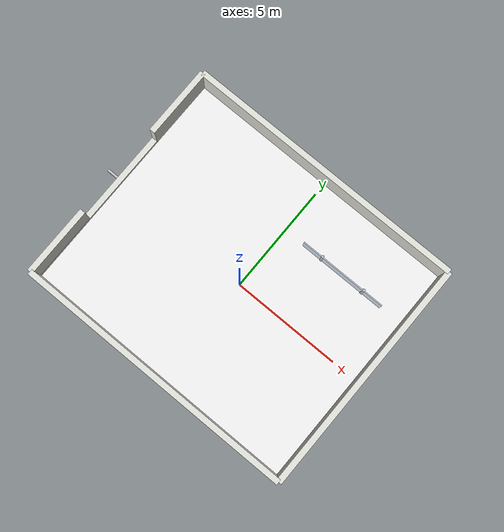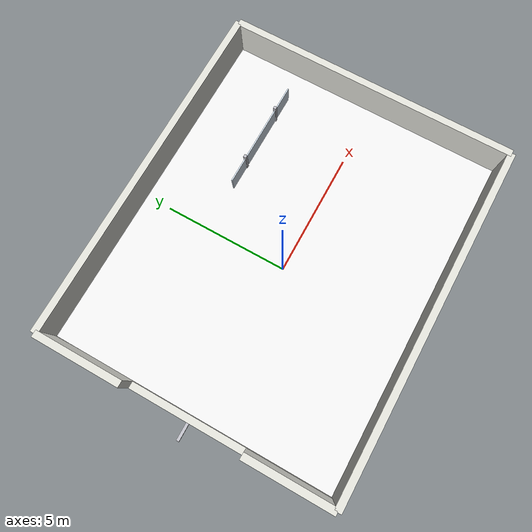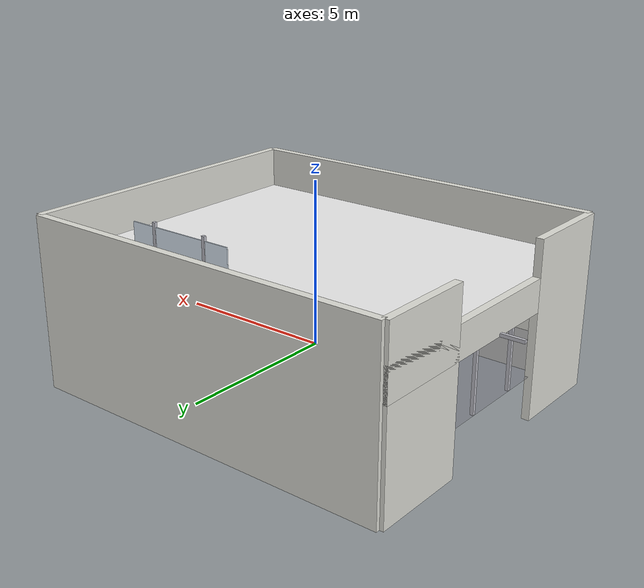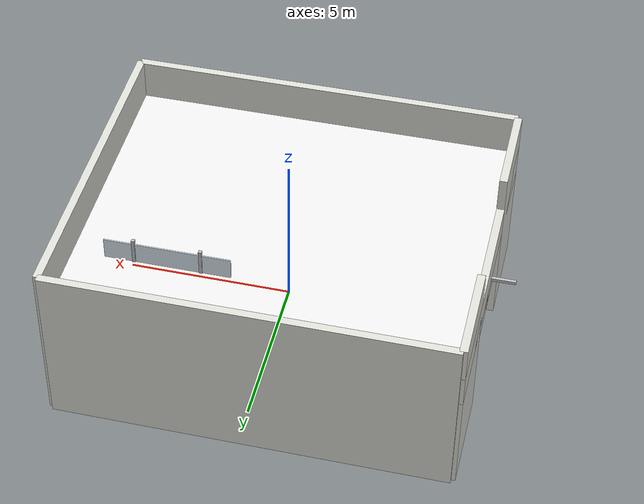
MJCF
<mujoco model="room">
<!-- Room assets and geometry -->
  <asset>
    <!-- Professional carpet with subtle pattern -->
    <texture name="office_carpet" type="2d" builtin="checker"
             rgb1="0.42 0.42 0.48" rgb2="0.38 0.38 0.44"
             width="64" height="64"/>

    <!-- Clean drywall -->
    <texture name="drywall" type="2d" builtin="flat"
             rgb1="0.88 0.88 0.85" rgb2="0.85 0.85 0.82"
             width="1024" height="1024"/>

    <!-- Drop ceiling tiles -->
    <texture name="ceiling_tiles" type="2d" builtin="checker"
             rgb1="0.96 0.96 0.96" rgb2="0.92 0.92 0.92"
             width="32" height="32"/>

    <!-- Glass partition -->
    <texture name="frosted_glass" type="2d" builtin="gradient"
             rgb1="0.9 0.95 1.0" rgb2="0.85 0.9 0.95"
             width="128" height="128"/>

    <!-- Aluminum trim -->
    <texture name="aluminum" type="2d" builtin="flat"
             rgb1="0.75 0.75 0.78" rgb2="0.72 0.72 0.75"
             width="256" height="256"/>

    <!-- Materials -->
    <material name="carpet" texture="office_carpet"
              texrepeat="30 24"
              specular="0.02"
              shininess="0.01"
              reflectance="0.0"/>

    <material name="wall_paint" texture="drywall"
              texrepeat="3 3"
              specular="0.08"
              shininess="0.03"
              reflectance="0.01"/>

    <material name="drop_ceiling" texture="ceiling_tiles"
              texrepeat="20 16"
              specular="0.15"
              shininess="0.08"
              reflectance="0.05"/>

    <material name="glass_partition" texture="frosted_glass"
              texrepeat="2 4"
              specular="0.9"
              shininess="0.8"
              reflectance="0.3"/>

    <material name="metal_trim" texture="aluminum"
              texrepeat="4 4"
              specular="0.85"
              shininess="0.7"
              reflectance="0.5"/>
  </asset>

  <worldbody>
    <!-- Professional carpet -->
    <geom name="floor" type="plane"
          size="6 5 0.1"
          material="carpet"
          friction="1.6 0.08 0.04"/>

    <!-- Clean drywall walls -->
    <geom name="wall_north" type="box"
          size="6 0.12 2.7"
          pos="0 5 1.35"
          material="wall_paint"/>
    <geom name="wall_south" type="box"
          size="6 0.12 2.7"
          pos="0 -5 1.35"
          material="wall_paint"/>
    <geom name="wall_east" type="box"
          size="0.12 5 2.7"
          pos="6 0 1.35"
          material="wall_paint"/>

    <!-- Wall with door opening -->
    <geom name="wall_west_top" type="box"
          size="0.12 5 0.5"
          pos="-6 0 2.45"
          material="wall_paint"/>
    <geom name="wall_west_left" type="box"
          size="0.12 1.5 2.7"
          pos="-6 -3.5 1.35"
          material="wall_paint"/>
    <geom name="wall_west_right" type="box"
          size="0.12 1.5 2.7"
          pos="-6 3.5 1.35"
          material="wall_paint"/>

    <!-- Door frame -->
    <geom name="door_frame_top" type="box"
          size="0.9 0.05 0.05"
          pos="-5.95 0 2.0"
          material="metal_trim"/>
    <geom name="door_frame_left" type="box"
          size="0.05 0.05 1.0"
          pos="-5.95 -0.9 1.0"
          material="metal_trim"/>
    <geom name="door_frame_right" type="box"
          size="0.05 0.05 1.0"
          pos="-5.95 0.9 1.0"
          material="metal_trim"/>

    <!-- Drop ceiling with tiles -->
    <geom name="ceiling" type="box"
          size="6 5 0.08"
          pos="0 0 2.7"
          material="drop_ceiling"/>

    <!-- Ceiling grid (aluminum) -->
    <geom name="grid1" type="box"
          size="6 0.02 0.01"
          pos="0 -2.5 2.65"
          material="metal_trim"/>
    <geom name="grid2" type="box"
          size="6 0.02 0.01"
          pos="0 0 2.65"
          material="metal_trim"/>
    <geom name="grid3" type="box"
          size="6 0.02 0.01"
          pos="0 2.5 2.65"
          material="metal_trim"/>
    <geom name="grid4" type="box"
          size="0.02 5 0.01"
          pos="-3 0 2.65"
          material="metal_trim"/>
    <geom name="grid5" type="box"
          size="0.02 5 0.01"
          pos="0 0 2.65"
          material="metal_trim"/>
    <geom name="grid6" type="box"
          size="0.02 5 0.01"
          pos="3 0 2.65"
          material="metal_trim"/>

    <!-- LED panel lights -->
    <geom name="light_panel1" type="box"
          size="1.4 1.2 0.02"
          pos="-1.5 -1.25 2.68"
          rgba="1 1 0.97 0.9"/>
    <geom name="light_panel2" type="box"
          size="1.4 1.2 0.02"
          pos="1.5 -1.25 2.68"
          rgba="1 1 0.97 0.9"/>
    <geom name="light_panel3" type="box"
          size="1.4 1.2 0.02"
          pos="-1.5 1.25 2.68"
          rgba="1 1 0.97 0.9"/>
    <geom name="light_panel4" type="box"
          size="1.4 1.2 0.02"
          pos="1.5 1.25 2.68"
          rgba="1 1 0.97 0.9"/>

    <!-- Glass partition with aluminum frame -->
    <geom name="partition_frame_top" type="box"
          size="2 0.05 0.05"
          pos="3 2.5 2.45"
          material="metal_trim"/>
    <geom name="partition_frame_bottom" type="box"
          size="2 0.05 0.05"
          pos="3 2.5 0.05"
          material="metal_trim"/>
    <geom name="partition_frame_left" type="box"
          size="0.05 0.05 2.4"
          pos="2 2.5 1.2"
          material="metal_trim"/>
    <geom name="partition_frame_right" type="box"
          size="0.05 0.05 2.4"
          pos="4 2.5 1.2"
          material="metal_trim"/>
    <geom name="glass_panel" type="box"
          size="1.9 0.02 2.3"
          pos="3 2.5 1.15"
          material="glass_partition"/>
  </worldbody>
</mujoco>
